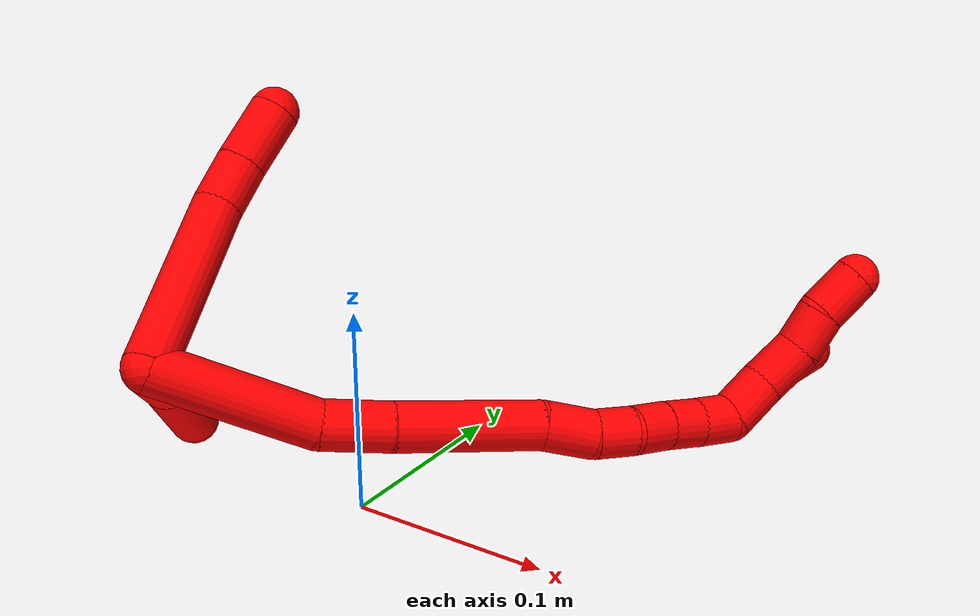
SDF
<sdf version="1.7">
 <world name="default">
  <model name="2">
   <static>0</static>
   <link name="2">
    <collision name="collision-cylinder-e_1_2_8">
     <pose>-0.003064 0.026945 0.037552 -0.622406 -0.066204 0.021302</pose>
     <geometry><cylinder><radius>0.0125</radius><length>0.09264</length></cylinder></geometry>
     <surface>
      <friction><ode><mu>1.16</mu><mu2>1.16</mu2><slip1>0</slip1><slip2>0</slip2></ode></friction>
      <contact><ode><kp>1e+06</kp><kd>1</kd><max_vel>0</max_vel><min_depth>0.001</min_depth></ode></contact>
     </surface>
    </collision>
    <visual name="visual-cylinder-e_1_2_8">
     <pose>-0.003064 0.026945 0.037552 -0.622406 -0.066204 0.021302</pose>
     <geometry><cylinder><radius>0.0125</radius><length>0.09264</length></cylinder></geometry>
     <material><ambient>1 0 0 1</ambient></material>
    </visual>
    <collision name="collision-cylinder-e_2_8_9">
     <pose>-0.003648 0.060716 0.085474 -0.582103 0.197245 -0.059261</pose>
     <geometry><cylinder><radius>0.0125</radius><length>0.025321</length></cylinder></geometry>
     <surface>
      <friction><ode><mu>1.16</mu><mu2>1.16</mu2><slip1>0</slip1><slip2>0</slip2></ode></friction>
      <contact><ode><kp>1e+06</kp><kd>1</kd><max_vel>0</max_vel><min_depth>0.001</min_depth></ode></contact>
     </surface>
    </collision>
    <visual name="visual-cylinder-e_2_8_9">
     <pose>-0.003648 0.060716 0.085474 -0.582103 0.197245 -0.059261</pose>
     <geometry><cylinder><radius>0.0125</radius><length>0.025321</length></cylinder></geometry>
     <material><ambient>1 0 0 1</ambient></material>
    </visual>
    <collision name="collision-cylinder-e_3_9_6">
     <pose>0.002767 0.076478 0.108544 -0.613159 0.248115 -0.078908</pose>
     <geometry><cylinder><radius>0.0125</radius><length>0.032038</length></cylinder></geometry>
     <surface>
      <friction><ode><mu>1.16</mu><mu2>1.16</mu2><slip1>0</slip1><slip2>0</slip2></ode></friction>
      <contact><ode><kp>1e+06</kp><kd>1</kd><max_vel>0</max_vel><min_depth>0.001</min_depth></ode></contact>
     </surface>
    </collision>
    <visual name="visual-cylinder-e_3_9_6">
     <pose>0.002767 0.076478 0.108544 -0.613159 0.248115 -0.078908</pose>
     <geometry><cylinder><radius>0.0125</radius><length>0.032038</length></cylinder></geometry>
     <material><ambient>1 0 0 1</ambient></material>
    </visual>
    <collision name="collision-cylinder-e_1_2_10">
     <pose>-0.013297 0.014456 -0.003612 -1.81562 -0.728601 0.9085</pose>
     <geometry><cylinder><radius>0.0125</radius><length>0.039941</length></cylinder></geometry>
     <surface>
      <friction><ode><mu>1.16</mu><mu2>1.16</mu2><slip1>0</slip1><slip2>0</slip2></ode></friction>
      <contact><ode><kp>1e+06</kp><kd>1</kd><max_vel>0</max_vel><min_depth>0.001</min_depth></ode></contact>
     </surface>
    </collision>
    <visual name="visual-cylinder-e_1_2_10">
     <pose>-0.013297 0.014456 -0.003612 -1.81562 -0.728601 0.9085</pose>
     <geometry><cylinder><radius>0.0125</radius><length>0.039941</length></cylinder></geometry>
     <material><ambient>1 0 0 1</ambient></material>
    </visual>
    <collision name="collision-cylinder-e_2_10_5">
     <pose>-0.045513 0.050394 -0.016298 -1.97049 -0.681584 0.982161</pose>
     <geometry><cylinder><radius>0.0125</radius><length>0.060059</length></cylinder></geometry>
     <surface>
      <friction><ode><mu>1.16</mu><mu2>1.16</mu2><slip1>0</slip1><slip2>0</slip2></ode></friction>
      <contact><ode><kp>1e+06</kp><kd>1</kd><max_vel>0</max_vel><min_depth>0.001</min_depth></ode></contact>
     </surface>
    </collision>
    <visual name="visual-cylinder-e_2_10_5">
     <pose>-0.045513 0.050394 -0.016298 -1.97049 -0.681584 0.982161</pose>
     <geometry><cylinder><radius>0.0125</radius><length>0.060059</length></cylinder></geometry>
     <material><ambient>1 0 0 1</ambient></material>
    </visual>
    <collision name="collision-cylinder-e_1_2_11">
     <pose>0.01825 0.03282 -0.017317 -2.05631 0.457068 -0.73627</pose>
     <geometry><cylinder><radius>0.0125</radius><length>0.082707</length></cylinder></geometry>
     <surface>
      <friction><ode><mu>1.16</mu><mu2>1.16</mu2><slip1>0</slip1><slip2>0</slip2></ode></friction>
      <contact><ode><kp>1e+06</kp><kd>1</kd><max_vel>0</max_vel><min_depth>0.001</min_depth></ode></contact>
     </surface>
    </collision>
    <visual name="visual-cylinder-e_1_2_11">
     <pose>0.01825 0.03282 -0.017317 -2.05631 0.457068 -0.73627</pose>
     <geometry><cylinder><radius>0.0125</radius><length>0.082707</length></cylinder></geometry>
     <material><ambient>1 0 0 1</ambient></material>
    </visual>
    <collision name="collision-cylinder-e_2_11_12">
     <pose>0.046606 0.079937 -0.037233 -1.75055 0.607686 -0.718707</pose>
     <geometry><cylinder><radius>0.0125</radius><length>0.035401</length></cylinder></geometry>
     <surface>
      <friction><ode><mu>1.16</mu><mu2>1.16</mu2><slip1>0</slip1><slip2>0</slip2></ode></friction>
      <contact><ode><kp>1e+06</kp><kd>1</kd><max_vel>0</max_vel><min_depth>0.001</min_depth></ode></contact>
     </surface>
    </collision>
    <visual name="visual-cylinder-e_2_11_12">
     <pose>0.046606 0.079937 -0.037233 -1.75055 0.607686 -0.718707</pose>
     <geometry><cylinder><radius>0.0125</radius><length>0.035401</length></cylinder></geometry>
     <material><ambient>1 0 0 1</ambient></material>
    </visual>
    <collision name="collision-cylinder-e_3_12_13">
     <pose>0.076332 0.125262 -0.043621 -1.69235 0.560517 -0.628705</pose>
     <geometry><cylinder><radius>0.0125</radius><length>0.07381</length></cylinder></geometry>
     <surface>
      <friction><ode><mu>1.16</mu><mu2>1.16</mu2><slip1>0</slip1><slip2>0</slip2></ode></friction>
      <contact><ode><kp>1e+06</kp><kd>1</kd><max_vel>0</max_vel><min_depth>0.001</min_depth></ode></contact>
     </surface>
    </collision>
    <visual name="visual-cylinder-e_3_12_13">
     <pose>0.076332 0.125262 -0.043621 -1.69235 0.560517 -0.628705</pose>
     <geometry><cylinder><radius>0.0125</radius><length>0.07381</length></cylinder></geometry>
     <material><ambient>1 0 0 1</ambient></material>
    </visual>
    <collision name="collision-cylinder-e_4_13_14">
     <pose>0.102868 0.167351 -0.051243 -1.90429 0.533612 -0.733181</pose>
     <geometry><cylinder><radius>0.0125</radius><length>0.027196</length></cylinder></geometry>
     <surface>
      <friction><ode><mu>1.16</mu><mu2>1.16</mu2><slip1>0</slip1><slip2>0</slip2></ode></friction>
      <contact><ode><kp>1e+06</kp><kd>1</kd><max_vel>0</max_vel><min_depth>0.001</min_depth></ode></contact>
     </surface>
    </collision>
    <visual name="visual-cylinder-e_4_13_14">
     <pose>0.102868 0.167351 -0.051243 -1.90429 0.533612 -0.733181</pose>
     <geometry><cylinder><radius>0.0125</radius><length>0.027196</length></cylinder></geometry>
     <material><ambient>1 0 0 1</ambient></material>
    </visual>
    <collision name="collision-cylinder-e_5_14_15">
     <pose>0.115028 0.1874 -0.055421 -1.60923 0.527816 -0.5475</pose>
     <geometry><cylinder><radius>0.0125</radius><length>0.020819</length></cylinder></geometry>
     <surface>
      <friction><ode><mu>1.16</mu><mu2>1.16</mu2><slip1>0</slip1><slip2>0</slip2></ode></friction>
      <contact><ode><kp>1e+06</kp><kd>1</kd><max_vel>0</max_vel><min_depth>0.001</min_depth></ode></contact>
     </surface>
    </collision>
    <visual name="visual-cylinder-e_5_14_15">
     <pose>0.115028 0.1874 -0.055421 -1.60923 0.527816 -0.5475</pose>
     <geometry><cylinder><radius>0.0125</radius><length>0.020819</length></cylinder></geometry>
     <material><ambient>1 0 0 1</ambient></material>
    </visual>
    <collision name="collision-cylinder-e_6_15_16">
     <pose>0.123151 0.205968 -0.055627 -1.55628 0.291996 -0.287846</pose>
     <geometry><cylinder><radius>0.0125</radius><length>0.020013</length></cylinder></geometry>
     <surface>
      <friction><ode><mu>1.16</mu><mu2>1.16</mu2><slip1>0</slip1><slip2>0</slip2></ode></friction>
      <contact><ode><kp>1e+06</kp><kd>1</kd><max_vel>0</max_vel><min_depth>0.001</min_depth></ode></contact>
     </surface>
    </collision>
    <visual name="visual-cylinder-e_6_15_16">
     <pose>0.123151 0.205968 -0.055627 -1.55628 0.291996 -0.287846</pose>
     <geometry><cylinder><radius>0.0125</radius><length>0.020013</length></cylinder></geometry>
     <material><ambient>1 0 0 1</ambient></material>
    </visual>
    <collision name="collision-cylinder-e_7_16_17">
     <pose>0.129426 0.224971 -0.05579 -1.60282 0.345677 -0.356694</pose>
     <geometry><cylinder><radius>0.0125</radius><length>0.020037</length></cylinder></geometry>
     <surface>
      <friction><ode><mu>1.16</mu><mu2>1.16</mu2><slip1>0</slip1><slip2>0</slip2></ode></friction>
      <contact><ode><kp>1e+06</kp><kd>1</kd><max_vel>0</max_vel><min_depth>0.001</min_depth></ode></contact>
     </surface>
    </collision>
    <visual name="visual-cylinder-e_7_16_17">
     <pose>0.129426 0.224971 -0.05579 -1.60282 0.345677 -0.356694</pose>
     <geometry><cylinder><radius>0.0125</radius><length>0.020037</length></cylinder></geometry>
     <material><ambient>1 0 0 1</ambient></material>
    </visual>
    <collision name="collision-cylinder-e_8_17_1">
     <pose>0.137251 0.243366 -0.056003 -1.56086 0.458537 -0.454161</pose>
     <geometry><cylinder><radius>0.0125</radius><length>0.020018</length></cylinder></geometry>
     <surface>
      <friction><ode><mu>1.16</mu><mu2>1.16</mu2><slip1>0</slip1><slip2>0</slip2></ode></friction>
      <contact><ode><kp>1e+06</kp><kd>1</kd><max_vel>0</max_vel><min_depth>0.001</min_depth></ode></contact>
     </surface>
    </collision>
    <visual name="visual-cylinder-e_8_17_1">
     <pose>0.137251 0.243366 -0.056003 -1.56086 0.458537 -0.454161</pose>
     <geometry><cylinder><radius>0.0125</radius><length>0.020018</length></cylinder></geometry>
     <material><ambient>1 0 0 1</ambient></material>
    </visual>
    <collision name="collision-cylinder-e_1_1_18">
     <pose>0.147151 0.261022 -0.04814 -0.840464 0.438867 -0.198661</pose>
     <geometry><cylinder><radius>0.0125</radius><length>0.025746</length></cylinder></geometry>
     <surface>
      <friction><ode><mu>1.16</mu><mu2>1.16</mu2><slip1>0</slip1><slip2>0</slip2></ode></friction>
      <contact><ode><kp>1e+06</kp><kd>1</kd><max_vel>0</max_vel><min_depth>0.001</min_depth></ode></contact>
     </surface>
    </collision>
    <visual name="visual-cylinder-e_1_1_18">
     <pose>0.147151 0.261022 -0.04814 -0.840464 0.438867 -0.198661</pose>
     <geometry><cylinder><radius>0.0125</radius><length>0.025746</length></cylinder></geometry>
     <material><ambient>1 0 0 1</ambient></material>
    </visual>
    <collision name="collision-cylinder-e_2_18_19">
     <pose>0.160277 0.27696 -0.032461 -0.742715 0.619706 -0.248081</pose>
     <geometry><cylinder><radius>0.0125</radius><length>0.026363</length></cylinder></geometry>
     <surface>
      <friction><ode><mu>1.16</mu><mu2>1.16</mu2><slip1>0</slip1><slip2>0</slip2></ode></friction>
      <contact><ode><kp>1e+06</kp><kd>1</kd><max_vel>0</max_vel><min_depth>0.001</min_depth></ode></contact>
     </surface>
    </collision>
    <visual name="visual-cylinder-e_2_18_19">
     <pose>0.160277 0.27696 -0.032461 -0.742715 0.619706 -0.248081</pose>
     <geometry><cylinder><radius>0.0125</radius><length>0.026363</length></cylinder></geometry>
     <material><ambient>1 0 0 1</ambient></material>
    </visual>
    <collision name="collision-cylinder-e_3_19_20">
     <pose>0.173935 0.287747 -0.015943 -0.388972 0.572713 -0.115869</pose>
     <geometry><cylinder><radius>0.0125</radius><length>0.022155</length></cylinder></geometry>
     <surface>
      <friction><ode><mu>1.16</mu><mu2>1.16</mu2><slip1>0</slip1><slip2>0</slip2></ode></friction>
      <contact><ode><kp>1e+06</kp><kd>1</kd><max_vel>0</max_vel><min_depth>0.001</min_depth></ode></contact>
     </surface>
    </collision>
    <visual name="visual-cylinder-e_3_19_20">
     <pose>0.173935 0.287747 -0.015943 -0.388972 0.572713 -0.115869</pose>
     <geometry><cylinder><radius>0.0125</radius><length>0.022155</length></cylinder></geometry>
     <material><ambient>1 0 0 1</ambient></material>
    </visual>
    <collision name="collision-cylinder-e_4_20_4">
     <pose>0.187403 0.298034 0.000686 -0.700415 0.618791 -0.232468</pose>
     <geometry><cylinder><radius>0.0125</radius><length>0.025737</length></cylinder></geometry>
     <surface>
      <friction><ode><mu>1.16</mu><mu2>1.16</mu2><slip1>0</slip1><slip2>0</slip2></ode></friction>
      <contact><ode><kp>1e+06</kp><kd>1</kd><max_vel>0</max_vel><min_depth>0.001</min_depth></ode></contact>
     </surface>
    </collision>
    <visual name="visual-cylinder-e_4_20_4">
     <pose>0.187403 0.298034 0.000686 -0.700415 0.618791 -0.232468</pose>
     <geometry><cylinder><radius>0.0125</radius><length>0.025737</length></cylinder></geometry>
     <material><ambient>1 0 0 1</ambient></material>
    </visual>
    <collision name="collision-cylinder-e_1_1_21">
     <pose>0.140343 0.273466 -0.047916 -1.20887 -0.059201 0.040894</pose>
     <geometry><cylinder><radius>0.0125</radius><length>0.045256</length></cylinder></geometry>
     <surface>
      <friction><ode><mu>1.16</mu><mu2>1.16</mu2><slip1>0</slip1><slip2>0</slip2></ode></friction>
      <contact><ode><kp>1e+06</kp><kd>1</kd><max_vel>0</max_vel><min_depth>0.001</min_depth></ode></contact>
     </surface>
    </collision>
    <visual name="visual-cylinder-e_1_1_21">
     <pose>0.140343 0.273466 -0.047916 -1.20887 -0.059201 0.040894</pose>
     <geometry><cylinder><radius>0.0125</radius><length>0.045256</length></cylinder></geometry>
     <material><ambient>1 0 0 1</ambient></material>
    </visual>
    <collision name="collision-cylinder-e_2_21_22">
     <pose>0.138089 0.305467 -0.036496 -1.266 -0.080059 0.058755</pose>
     <geometry><cylinder><radius>0.0125</radius><length>0.022877</length></cylinder></geometry>
     <surface>
      <friction><ode><mu>1.16</mu><mu2>1.16</mu2><slip1>0</slip1><slip2>0</slip2></ode></friction>
      <contact><ode><kp>1e+06</kp><kd>1</kd><max_vel>0</max_vel><min_depth>0.001</min_depth></ode></contact>
     </surface>
    </collision>
    <visual name="visual-cylinder-e_2_21_22">
     <pose>0.138089 0.305467 -0.036496 -1.266 -0.080059 0.058755</pose>
     <geometry><cylinder><radius>0.0125</radius><length>0.022877</length></cylinder></geometry>
     <material><ambient>1 0 0 1</ambient></material>
    </visual>
    <collision name="collision-cylinder-e_3_22_3">
     <pose>0.137388 0.331848 -0.029406 -1.33848 0.013444 -0.010634</pose>
     <geometry><cylinder><radius>0.0125</radius><length>0.031868</length></cylinder></geometry>
     <surface>
      <friction><ode><mu>1.16</mu><mu2>1.16</mu2><slip1>0</slip1><slip2>0</slip2></ode></friction>
      <contact><ode><kp>1e+06</kp><kd>1</kd><max_vel>0</max_vel><min_depth>0.001</min_depth></ode></contact>
     </surface>
    </collision>
    <visual name="visual-cylinder-e_3_22_3">
     <pose>0.137388 0.331848 -0.029406 -1.33848 0.013444 -0.010634</pose>
     <geometry><cylinder><radius>0.0125</radius><length>0.031868</length></cylinder></geometry>
     <material><ambient>1 0 0 1</ambient></material>
    </visual>
    <collision name="collision-sphere-3">
     <pose>0.137603 0.347352 -0.025738 0 -0 0</pose>
     <geometry><sphere><radius>0.0125</radius></sphere></geometry>
     <surface>
      <friction><ode><mu>1.16</mu><mu2>1.16</mu2><slip1>0</slip1><slip2>0</slip2></ode></friction>
      <contact><ode><kp>1e+06</kp><kd>1</kd><max_vel>0</max_vel><min_depth>0.001</min_depth></ode></contact>
     </surface>
    </collision>
    <visual name="visual-sphere-3">
     <pose>0.137603 0.347352 -0.025738 0 -0 0</pose>
     <geometry><sphere><radius>0.0125</radius></sphere></geometry>
     <material><ambient>1 0 0 1</ambient></material>
    </visual>
    <collision name="collision-sphere-22">
     <pose>0.137174 0.316343 -0.033075 0 -0 0</pose>
     <geometry><sphere><radius>0.0125</radius></sphere></geometry>
     <surface>
      <friction><ode><mu>1.16</mu><mu2>1.16</mu2><slip1>0</slip1><slip2>0</slip2></ode></friction>
      <contact><ode><kp>1e+06</kp><kd>1</kd><max_vel>0</max_vel><min_depth>0.001</min_depth></ode></contact>
     </surface>
    </collision>
    <visual name="visual-sphere-22">
     <pose>0.137174 0.316343 -0.033075 0 -0 0</pose>
     <geometry><sphere><radius>0.0125</radius></sphere></geometry>
     <material><ambient>1 0 0 1</ambient></material>
    </visual>
    <collision name="collision-sphere-21">
     <pose>0.139004 0.294591 -0.039918 0 -0 0</pose>
     <geometry><sphere><radius>0.0125</radius></sphere></geometry>
     <surface>
      <friction><ode><mu>1.16</mu><mu2>1.16</mu2><slip1>0</slip1><slip2>0</slip2></ode></friction>
      <contact><ode><kp>1e+06</kp><kd>1</kd><max_vel>0</max_vel><min_depth>0.001</min_depth></ode></contact>
     </surface>
    </collision>
    <visual name="visual-sphere-21">
     <pose>0.139004 0.294591 -0.039918 0 -0 0</pose>
     <geometry><sphere><radius>0.0125</radius></sphere></geometry>
     <material><ambient>1 0 0 1</ambient></material>
    </visual>
    <collision name="collision-sphere-4">
     <pose>0.194867 0.30479 0.008701 0 -0 0</pose>
     <geometry><sphere><radius>0.0125</radius></sphere></geometry>
     <surface>
      <friction><ode><mu>1.16</mu><mu2>1.16</mu2><slip1>0</slip1><slip2>0</slip2></ode></friction>
      <contact><ode><kp>1e+06</kp><kd>1</kd><max_vel>0</max_vel><min_depth>0.001</min_depth></ode></contact>
     </surface>
    </collision>
    <visual name="visual-sphere-4">
     <pose>0.194867 0.30479 0.008701 0 -0 0</pose>
     <geometry><sphere><radius>0.0125</radius></sphere></geometry>
     <material><ambient>1 0 0 1</ambient></material>
    </visual>
    <collision name="collision-sphere-20">
     <pose>0.179938 0.291278 -0.007329 0 -0 0</pose>
     <geometry><sphere><radius>0.0125</radius></sphere></geometry>
     <surface>
      <friction><ode><mu>1.16</mu><mu2>1.16</mu2><slip1>0</slip1><slip2>0</slip2></ode></friction>
      <contact><ode><kp>1e+06</kp><kd>1</kd><max_vel>0</max_vel><min_depth>0.001</min_depth></ode></contact>
     </surface>
    </collision>
    <visual name="visual-sphere-20">
     <pose>0.179938 0.291278 -0.007329 0 -0 0</pose>
     <geometry><sphere><radius>0.0125</radius></sphere></geometry>
     <material><ambient>1 0 0 1</ambient></material>
    </visual>
    <collision name="collision-sphere-5">
     <pose>-0.064432 0.071876 -0.025372 0 -0 0</pose>
     <geometry><sphere><radius>0.0125</radius></sphere></geometry>
     <surface>
      <friction><ode><mu>1.16</mu><mu2>1.16</mu2><slip1>0</slip1><slip2>0</slip2></ode></friction>
      <contact><ode><kp>1e+06</kp><kd>1</kd><max_vel>0</max_vel><min_depth>0.001</min_depth></ode></contact>
     </surface>
    </collision>
    <visual name="visual-sphere-5">
     <pose>-0.064432 0.071876 -0.025372 0 -0 0</pose>
     <geometry><sphere><radius>0.0125</radius></sphere></geometry>
     <material><ambient>1 0 0 1</ambient></material>
    </visual>
    <collision name="collision-sphere-10">
     <pose>-0.026594 0.028912 -0.007223 0 -0 0</pose>
     <geometry><sphere><radius>0.0125</radius></sphere></geometry>
     <surface>
      <friction><ode><mu>1.16</mu><mu2>1.16</mu2><slip1>0</slip1><slip2>0</slip2></ode></friction>
      <contact><ode><kp>1e+06</kp><kd>1</kd><max_vel>0</max_vel><min_depth>0.001</min_depth></ode></contact>
     </surface>
    </collision>
    <visual name="visual-sphere-10">
     <pose>-0.026594 0.028912 -0.007223 0 -0 0</pose>
     <geometry><sphere><radius>0.0125</radius></sphere></geometry>
     <material><ambient>1 0 0 1</ambient></material>
    </visual>
    <collision name="collision-sphere-6">
     <pose>0.006701 0.085414 0.121244 0 -0 0</pose>
     <geometry><sphere><radius>0.0125</radius></sphere></geometry>
     <surface>
      <friction><ode><mu>1.16</mu><mu2>1.16</mu2><slip1>0</slip1><slip2>0</slip2></ode></friction>
      <contact><ode><kp>1e+06</kp><kd>1</kd><max_vel>0</max_vel><min_depth>0.001</min_depth></ode></contact>
     </surface>
    </collision>
    <visual name="visual-sphere-6">
     <pose>0.006701 0.085414 0.121244 0 -0 0</pose>
     <geometry><sphere><radius>0.0125</radius></sphere></geometry>
     <material><ambient>1 0 0 1</ambient></material>
    </visual>
    <collision name="collision-sphere-9">
     <pose>-0.001167 0.067542 0.095844 0 -0 0</pose>
     <geometry><sphere><radius>0.0125</radius></sphere></geometry>
     <surface>
      <friction><ode><mu>1.16</mu><mu2>1.16</mu2><slip1>0</slip1><slip2>0</slip2></ode></friction>
      <contact><ode><kp>1e+06</kp><kd>1</kd><max_vel>0</max_vel><min_depth>0.001</min_depth></ode></contact>
     </surface>
    </collision>
    <visual name="visual-sphere-9">
     <pose>-0.001167 0.067542 0.095844 0 -0 0</pose>
     <geometry><sphere><radius>0.0125</radius></sphere></geometry>
     <material><ambient>1 0 0 1</ambient></material>
    </visual>
    <collision name="collision-sphere-2">
     <geometry><sphere><radius>0.0125</radius></sphere></geometry>
     <surface>
      <friction><ode><mu>1.16</mu><mu2>1.16</mu2><slip1>0</slip1><slip2>0</slip2></ode></friction>
      <contact><ode><kp>1e+06</kp><kd>1</kd><max_vel>0</max_vel><min_depth>0.001</min_depth></ode></contact>
     </surface>
    </collision>
    <visual name="visual-sphere-2">
     <geometry><sphere><radius>0.0125</radius></sphere></geometry>
     <material><ambient>1 0 0 1</ambient></material>
    </visual>
    <collision name="collision-sphere-19">
     <pose>0.167932 0.284217 -0.024557 0 -0 0</pose>
     <geometry><sphere><radius>0.0125</radius></sphere></geometry>
     <surface>
      <friction><ode><mu>1.16</mu><mu2>1.16</mu2><slip1>0</slip1><slip2>0</slip2></ode></friction>
      <contact><ode><kp>1e+06</kp><kd>1</kd><max_vel>0</max_vel><min_depth>0.001</min_depth></ode></contact>
     </surface>
    </collision>
    <visual name="visual-sphere-19">
     <pose>0.167932 0.284217 -0.024557 0 -0 0</pose>
     <geometry><sphere><radius>0.0125</radius></sphere></geometry>
     <material><ambient>1 0 0 1</ambient></material>
    </visual>
    <collision name="collision-sphere-8">
     <pose>-0.006129 0.05389 0.075103 0 -0 0</pose>
     <geometry><sphere><radius>0.0125</radius></sphere></geometry>
     <surface>
      <friction><ode><mu>1.16</mu><mu2>1.16</mu2><slip1>0</slip1><slip2>0</slip2></ode></friction>
      <contact><ode><kp>1e+06</kp><kd>1</kd><max_vel>0</max_vel><min_depth>0.001</min_depth></ode></contact>
     </surface>
    </collision>
    <visual name="visual-sphere-8">
     <pose>-0.006129 0.05389 0.075103 0 -0 0</pose>
     <geometry><sphere><radius>0.0125</radius></sphere></geometry>
     <material><ambient>1 0 0 1</ambient></material>
    </visual>
    <collision name="collision-sphere-11">
     <pose>0.0365 0.06564 -0.034635 0 -0 0</pose>
     <geometry><sphere><radius>0.0125</radius></sphere></geometry>
     <surface>
      <friction><ode><mu>1.16</mu><mu2>1.16</mu2><slip1>0</slip1><slip2>0</slip2></ode></friction>
      <contact><ode><kp>1e+06</kp><kd>1</kd><max_vel>0</max_vel><min_depth>0.001</min_depth></ode></contact>
     </surface>
    </collision>
    <visual name="visual-sphere-11">
     <pose>0.0365 0.06564 -0.034635 0 -0 0</pose>
     <geometry><sphere><radius>0.0125</radius></sphere></geometry>
     <material><ambient>1 0 0 1</ambient></material>
    </visual>
    <collision name="collision-sphere-12">
     <pose>0.056713 0.094235 -0.039831 0 -0 0</pose>
     <geometry><sphere><radius>0.0125</radius></sphere></geometry>
     <surface>
      <friction><ode><mu>1.16</mu><mu2>1.16</mu2><slip1>0</slip1><slip2>0</slip2></ode></friction>
      <contact><ode><kp>1e+06</kp><kd>1</kd><max_vel>0</max_vel><min_depth>0.001</min_depth></ode></contact>
     </surface>
    </collision>
    <visual name="visual-sphere-12">
     <pose>0.056713 0.094235 -0.039831 0 -0 0</pose>
     <geometry><sphere><radius>0.0125</radius></sphere></geometry>
     <material><ambient>1 0 0 1</ambient></material>
    </visual>
    <collision name="collision-sphere-13">
     <pose>0.095952 0.156289 -0.047411 0 -0 0</pose>
     <geometry><sphere><radius>0.0125</radius></sphere></geometry>
     <surface>
      <friction><ode><mu>1.16</mu><mu2>1.16</mu2><slip1>0</slip1><slip2>0</slip2></ode></friction>
      <contact><ode><kp>1e+06</kp><kd>1</kd><max_vel>0</max_vel><min_depth>0.001</min_depth></ode></contact>
     </surface>
    </collision>
    <visual name="visual-sphere-13">
     <pose>0.095952 0.156289 -0.047411 0 -0 0</pose>
     <geometry><sphere><radius>0.0125</radius></sphere></geometry>
     <material><ambient>1 0 0 1</ambient></material>
    </visual>
    <collision name="collision-sphere-14">
     <pose>0.109785 0.178414 -0.055076 0 -0 0</pose>
     <geometry><sphere><radius>0.0125</radius></sphere></geometry>
     <surface>
      <friction><ode><mu>1.16</mu><mu2>1.16</mu2><slip1>0</slip1><slip2>0</slip2></ode></friction>
      <contact><ode><kp>1e+06</kp><kd>1</kd><max_vel>0</max_vel><min_depth>0.001</min_depth></ode></contact>
     </surface>
    </collision>
    <visual name="visual-sphere-14">
     <pose>0.109785 0.178414 -0.055076 0 -0 0</pose>
     <geometry><sphere><radius>0.0125</radius></sphere></geometry>
     <material><ambient>1 0 0 1</ambient></material>
    </visual>
    <collision name="collision-sphere-15">
     <pose>0.12027 0.196386 -0.055767 0 -0 0</pose>
     <geometry><sphere><radius>0.0125</radius></sphere></geometry>
     <surface>
      <friction><ode><mu>1.16</mu><mu2>1.16</mu2><slip1>0</slip1><slip2>0</slip2></ode></friction>
      <contact><ode><kp>1e+06</kp><kd>1</kd><max_vel>0</max_vel><min_depth>0.001</min_depth></ode></contact>
     </surface>
    </collision>
    <visual name="visual-sphere-15">
     <pose>0.12027 0.196386 -0.055767 0 -0 0</pose>
     <geometry><sphere><radius>0.0125</radius></sphere></geometry>
     <material><ambient>1 0 0 1</ambient></material>
    </visual>
    <collision name="collision-sphere-16">
     <pose>0.126031 0.21555 -0.055488 0 -0 0</pose>
     <geometry><sphere><radius>0.0125</radius></sphere></geometry>
     <surface>
      <friction><ode><mu>1.16</mu><mu2>1.16</mu2><slip1>0</slip1><slip2>0</slip2></ode></friction>
      <contact><ode><kp>1e+06</kp><kd>1</kd><max_vel>0</max_vel><min_depth>0.001</min_depth></ode></contact>
     </surface>
    </collision>
    <visual name="visual-sphere-16">
     <pose>0.126031 0.21555 -0.055488 0 -0 0</pose>
     <geometry><sphere><radius>0.0125</radius></sphere></geometry>
     <material><ambient>1 0 0 1</ambient></material>
    </visual>
    <collision name="collision-sphere-17">
     <pose>0.13282 0.234392 -0.056092 0 -0 0</pose>
     <geometry><sphere><radius>0.0125</radius></sphere></geometry>
     <surface>
      <friction><ode><mu>1.16</mu><mu2>1.16</mu2><slip1>0</slip1><slip2>0</slip2></ode></friction>
      <contact><ode><kp>1e+06</kp><kd>1</kd><max_vel>0</max_vel><min_depth>0.001</min_depth></ode></contact>
     </surface>
    </collision>
    <visual name="visual-sphere-17">
     <pose>0.13282 0.234392 -0.056092 0 -0 0</pose>
     <geometry><sphere><radius>0.0125</radius></sphere></geometry>
     <material><ambient>1 0 0 1</ambient></material>
    </visual>
    <collision name="collision-sphere-1">
     <pose>0.141681 0.252341 -0.055914 0 -0 0</pose>
     <geometry><sphere><radius>0.0125</radius></sphere></geometry>
     <surface>
      <friction><ode><mu>1.16</mu><mu2>1.16</mu2><slip1>0</slip1><slip2>0</slip2></ode></friction>
      <contact><ode><kp>1e+06</kp><kd>1</kd><max_vel>0</max_vel><min_depth>0.001</min_depth></ode></contact>
     </surface>
    </collision>
    <visual name="visual-sphere-1">
     <pose>0.141681 0.252341 -0.055914 0 -0 0</pose>
     <geometry><sphere><radius>0.0125</radius></sphere></geometry>
     <material><ambient>1 0 0 1</ambient></material>
    </visual>
    <collision name="collision-sphere-18">
     <pose>0.152621 0.269703 -0.040366 0 -0 0</pose>
     <geometry><sphere><radius>0.0125</radius></sphere></geometry>
     <surface>
      <friction><ode><mu>1.16</mu><mu2>1.16</mu2><slip1>0</slip1><slip2>0</slip2></ode></friction>
      <contact><ode><kp>1e+06</kp><kd>1</kd><max_vel>0</max_vel><min_depth>0.001</min_depth></ode></contact>
     </surface>
    </collision>
    <visual name="visual-sphere-18">
     <pose>0.152621 0.269703 -0.040366 0 -0 0</pose>
     <geometry><sphere><radius>0.0125</radius></sphere></geometry>
     <material><ambient>1 0 0 1</ambient></material>
    </visual>
    <inertial>
     <pose>0.065091 0.139784 -0.013658 0 -0 0</pose>
     <mass>0.75</mass>
     <inertia>
      <ixx>0.000152</ixx>
      <ixy>0</ixy>
      <ixz>0</ixz>
      <iyy>9.4e-05</iyy>
      <iyz>0</iyz>
      <izz>-0.000187</izz>
     </inertia>
    </inertial>
   </link>
   <pose>-0.074468 -0.056808 0.076398 -0.285406 -0.370805 -0.056093</pose>
  </model>
 </world>
</sdf>
